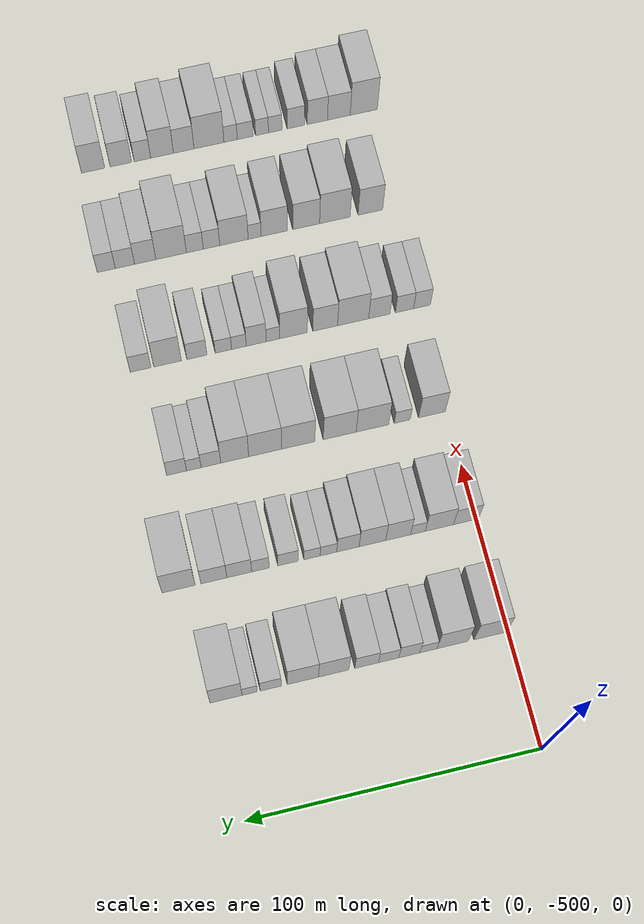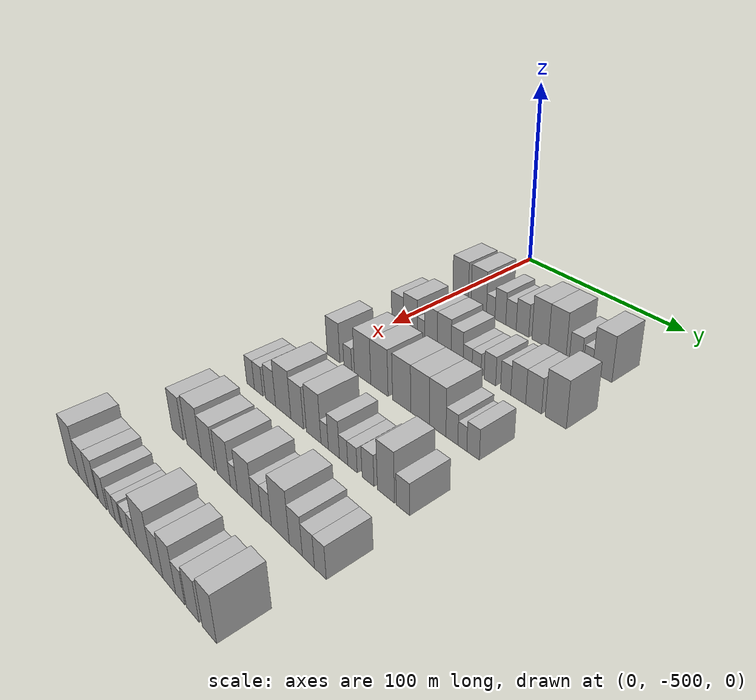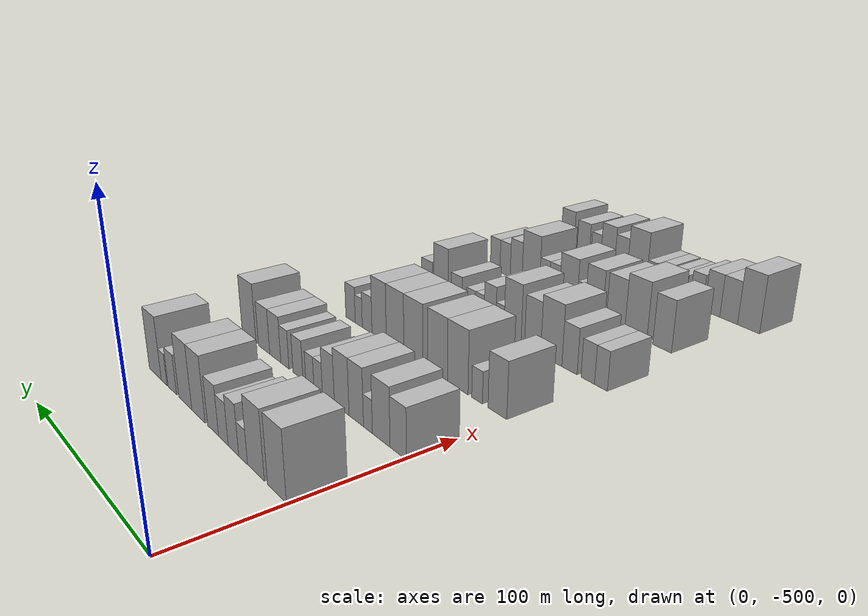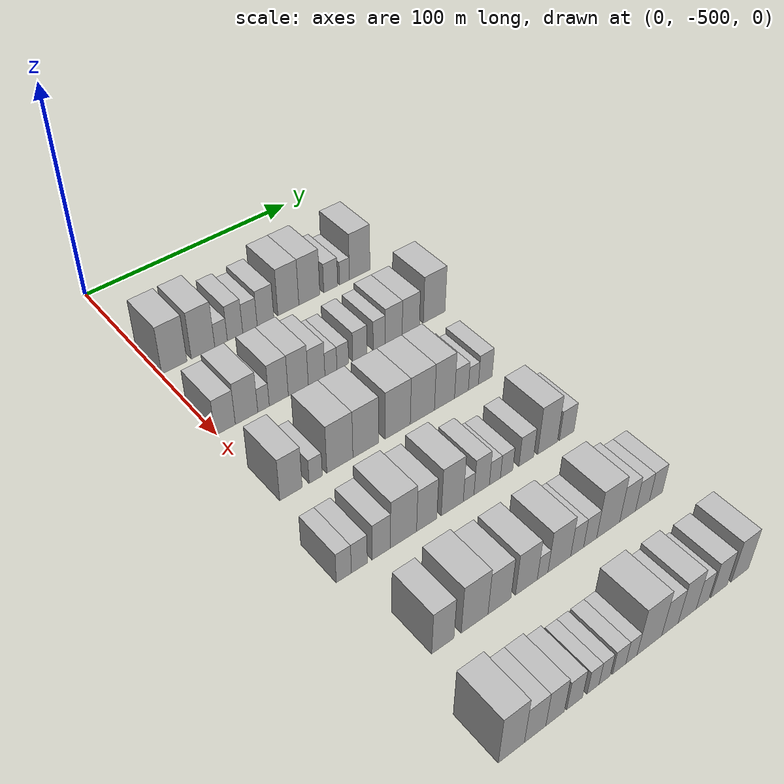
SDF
<sdf version="1.6">
 <world name="default">
  <model name="building_11">
   <static>1</static>
   <pose>50.0000 -493.7146 0 0.000000 0.000000 0.000000</pose>
   <link name="link">
    <pose>0 0 12.00 0 0 0</pose>
    <collision name="collision"><geometry><box><size>20.0000 11.3810 24.0000</size></box></geometry></collision>
    <visual name="visual">
     <cast_shadows>0</cast_shadows>
     <geometry><box><size>20.0000 11.3810 24.0000</size></box></geometry>
     <material>
      <script>
       <uri>model://HANNAS_wall/materials/scripts</uri>
       <uri>model://HANNAS_wall/materials/textures</uri>
       <name>vrc/HANNAS_wall</name>
      </script>
     </material>
    </visual>
   </link>
  </model>
  <model name="building_12">
   <static>1</static>
   <pose>50.0000 -480.6043 0 0.000000 0.000000 0.000000</pose>
   <link name="link">
    <pose>0 0 12.00 0 0 0</pose>
    <collision name="collision"><geometry><box><size>20.0000 10.8395 24.0000</size></box></geometry></collision>
    <visual name="visual">
     <cast_shadows>0</cast_shadows>
     <geometry><box><size>20.0000 10.8395 24.0000</size></box></geometry>
     <material>
      <script>
       <uri>model://HANNAS_wall/materials/scripts</uri>
       <uri>model://HANNAS_wall/materials/textures</uri>
       <name>vrc/HANNAS_wall</name>
      </script>
     </material>
    </visual>
   </link>
  </model>
  <model name="building_13">
   <static>1</static>
   <pose>50.0000 -472.2145 0 0.000000 0.000000 0.000000</pose>
   <link name="link">
    <pose>0 0 6.00 0 0 0</pose>
    <collision name="collision"><geometry><box><size>20.0000 5.9401 12.0000</size></box></geometry></collision>
    <visual name="visual">
     <cast_shadows>0</cast_shadows>
     <geometry><box><size>20.0000 5.9401 12.0000</size></box></geometry>
     <material>
      <script>
       <uri>model://HANNAS_wall/materials/scripts</uri>
       <uri>model://HANNAS_wall/materials/textures</uri>
       <name>vrc/HANNAS_wall</name>
      </script>
     </material>
    </visual>
   </link>
  </model>
  <model name="building_14">
   <static>1</static>
   <pose>50.0000 -465.6046 0 0.000000 0.000000 0.000000</pose>
   <link name="link">
    <pose>0 0 9.00 0 0 0</pose>
    <collision name="collision"><geometry><box><size>20.0000 7.2797 18.0000</size></box></geometry></collision>
    <visual name="visual">
     <cast_shadows>0</cast_shadows>
     <geometry><box><size>20.0000 7.2797 18.0000</size></box></geometry>
     <material>
      <script>
       <uri>model://HANNAS_wall/materials/scripts</uri>
       <uri>model://HANNAS_wall/materials/textures</uri>
       <name>vrc/HANNAS_wall</name>
      </script>
     </material>
    </visual>
   </link>
  </model>
  <model name="building_15">
   <static>1</static>
   <pose>50.0000 -458.4976 0 0.000000 0.000000 0.000000</pose>
   <link name="link">
    <pose>0 0 7.50 0 0 0</pose>
    <collision name="collision"><geometry><box><size>20.0000 6.9343 15.0000</size></box></geometry></collision>
    <visual name="visual">
     <cast_shadows>0</cast_shadows>
     <geometry><box><size>20.0000 6.9343 15.0000</size></box></geometry>
     <material>
      <script>
       <uri>model://HANNAS_wall/materials/scripts</uri>
       <uri>model://HANNAS_wall/materials/textures</uri>
       <name>vrc/HANNAS_wall</name>
      </script>
     </material>
    </visual>
   </link>
  </model>
  <model name="building_16">
   <static>1</static>
   <pose>50.0000 -450.9653 0 0.000000 0.000000 0.000000</pose>
   <link name="link">
    <pose>0 0 9.00 0 0 0</pose>
    <collision name="collision"><geometry><box><size>20.0000 8.1302 18.0000</size></box></geometry></collision>
    <visual name="visual">
     <cast_shadows>0</cast_shadows>
     <geometry><box><size>20.0000 8.1302 18.0000</size></box></geometry>
     <material>
      <script>
       <uri>model://HANNAS_wall/materials/scripts</uri>
       <uri>model://HANNAS_wall/materials/textures</uri>
       <name>vrc/HANNAS_wall</name>
      </script>
     </material>
    </visual>
   </link>
  </model>
  <model name="building_17">
   <static>1</static>
   <pose>50.0000 -439.6916 0 0.000000 0.000000 0.000000</pose>
   <link name="link">
    <pose>0 0 12.00 0 0 0</pose>
    <collision name="collision"><geometry><box><size>20.0000 10.4172 24.0000</size></box></geometry></collision>
    <visual name="visual">
     <cast_shadows>0</cast_shadows>
     <geometry><box><size>20.0000 10.4172 24.0000</size></box></geometry>
     <material>
      <script>
       <uri>model://HANNAS_wall/materials/scripts</uri>
       <uri>model://HANNAS_wall/materials/textures</uri>
       <name>vrc/HANNAS_wall</name>
      </script>
     </material>
    </visual>
   </link>
  </model>
  <model name="building_18">
   <static>1</static>
   <pose>50.0000 -429.1501 0 0.000000 0.000000 0.000000</pose>
   <link name="link">
    <pose>0 0 12.00 0 0 0</pose>
    <collision name="collision"><geometry><box><size>20.0000 10.6658 24.0000</size></box></geometry></collision>
    <visual name="visual">
     <cast_shadows>0</cast_shadows>
     <geometry><box><size>20.0000 10.6658 24.0000</size></box></geometry>
     <material>
      <script>
       <uri>model://HANNAS_wall/materials/scripts</uri>
       <uri>model://HANNAS_wall/materials/textures</uri>
       <name>vrc/HANNAS_wall</name>
      </script>
     </material>
    </visual>
   </link>
  </model>
  <model name="building_19">
   <static>1</static>
   <pose>50.0000 -418.2169 0 0.000000 0.000000 0.000000</pose>
   <link name="link">
    <pose>0 0 7.50 0 0 0</pose>
    <collision name="collision"><geometry><box><size>20.0000 7.2005 15.0000</size></box></geometry></collision>
    <visual name="visual">
     <cast_shadows>0</cast_shadows>
     <geometry><box><size>20.0000 7.2005 15.0000</size></box></geometry>
     <material>
      <script>
       <uri>model://HANNAS_wall/materials/scripts</uri>
       <uri>model://HANNAS_wall/materials/textures</uri>
       <name>vrc/HANNAS_wall</name>
      </script>
     </material>
    </visual>
   </link>
  </model>
  <model name="building_20">
   <static>1</static>
   <pose>50.0000 -411.0468 0 0.000000 0.000000 0.000000</pose>
   <link name="link">
    <pose>0 0 6.00 0 0 0</pose>
    <collision name="collision"><geometry><box><size>20.0000 5.1398 12.0000</size></box></geometry></collision>
    <visual name="visual">
     <cast_shadows>0</cast_shadows>
     <geometry><box><size>20.0000 5.1398 12.0000</size></box></geometry>
     <material>
      <script>
       <uri>model://HANNAS_wall/materials/scripts</uri>
       <uri>model://HANNAS_wall/materials/textures</uri>
       <name>vrc/HANNAS_wall</name>
      </script>
     </material>
    </visual>
   </link>
  </model>
  <model name="building_21">
   <static>1</static>
   <pose>50.0000 -403.0374 0 0.000000 0.000000 0.000000</pose>
   <link name="link">
    <pose>0 0 12.00 0 0 0</pose>
    <collision name="collision"><geometry><box><size>20.0000 10.8790 24.0000</size></box></geometry></collision>
    <visual name="visual">
     <cast_shadows>0</cast_shadows>
     <geometry><box><size>20.0000 10.8790 24.0000</size></box></geometry>
     <material>
      <script>
       <uri>model://HANNAS_wall/materials/scripts</uri>
       <uri>model://HANNAS_wall/materials/textures</uri>
       <name>vrc/HANNAS_wall</name>
      </script>
     </material>
    </visual>
   </link>
  </model>
  <model name="building_142">
   <static>1</static>
   <pose>90.0000 -496.2569 0 0.000000 0.000000 0.000000</pose>
   <link name="link">
    <pose>0 0 9.00 0 0 0</pose>
    <collision name="collision"><geometry><box><size>20.0000 8.9079 18.0000</size></box></geometry></collision>
    <visual name="visual">
     <cast_shadows>0</cast_shadows>
     <geometry><box><size>20.0000 8.9079 18.0000</size></box></geometry>
     <material>
      <script>
       <uri>model://HANNAS_wall/materials/scripts</uri>
       <uri>model://HANNAS_wall/materials/textures</uri>
       <name>vrc/HANNAS_wall</name>
      </script>
     </material>
    </visual>
   </link>
  </model>
  <model name="building_143">
   <static>1</static>
   <pose>90.0000 -486.7969 0 0.000000 0.000000 0.000000</pose>
   <link name="link">
    <pose>0 0 10.50 0 0 0</pose>
    <collision name="collision"><geometry><box><size>20.0000 10.0123 21.0000</size></box></geometry></collision>
    <visual name="visual">
     <cast_shadows>0</cast_shadows>
     <geometry><box><size>20.0000 10.0123 21.0000</size></box></geometry>
     <material>
      <script>
       <uri>model://HANNAS_wall/materials/scripts</uri>
       <uri>model://HANNAS_wall/materials/textures</uri>
       <name>vrc/HANNAS_wall</name>
      </script>
     </material>
    </visual>
   </link>
  </model>
  <model name="building_144">
   <static>1</static>
   <pose>90.0000 -479.1912 0 0.000000 0.000000 0.000000</pose>
   <link name="link">
    <pose>0 0 6.00 0 0 0</pose>
    <collision name="collision"><geometry><box><size>20.0000 5.1990 12.0000</size></box></geometry></collision>
    <visual name="visual">
     <cast_shadows>0</cast_shadows>
     <geometry><box><size>20.0000 5.1990 12.0000</size></box></geometry>
     <material>
      <script>
       <uri>model://HANNAS_wall/materials/scripts</uri>
       <uri>model://HANNAS_wall/materials/textures</uri>
       <name>vrc/HANNAS_wall</name>
      </script>
     </material>
    </visual>
   </link>
  </model>
  <model name="building_145">
   <static>1</static>
   <pose>90.0000 -472.2256 0 0.000000 0.000000 0.000000</pose>
   <link name="link">
    <pose>0 0 10.50 0 0 0</pose>
    <collision name="collision"><geometry><box><size>20.0000 8.7324 21.0000</size></box></geometry></collision>
    <visual name="visual">
     <cast_shadows>0</cast_shadows>
     <geometry><box><size>20.0000 8.7324 21.0000</size></box></geometry>
     <material>
      <script>
       <uri>model://HANNAS_wall/materials/scripts</uri>
       <uri>model://HANNAS_wall/materials/textures</uri>
       <name>vrc/HANNAS_wall</name>
      </script>
     </material>
    </visual>
   </link>
  </model>
  <model name="building_146">
   <static>1</static>
   <pose>90.0000 -463.2004 0 0.000000 0.000000 0.000000</pose>
   <link name="link">
    <pose>0 0 10.50 0 0 0</pose>
    <collision name="collision"><geometry><box><size>20.0000 9.3180 21.0000</size></box></geometry></collision>
    <visual name="visual">
     <cast_shadows>0</cast_shadows>
     <geometry><box><size>20.0000 9.3180 21.0000</size></box></geometry>
     <material>
      <script>
       <uri>model://HANNAS_wall/materials/scripts</uri>
       <uri>model://HANNAS_wall/materials/textures</uri>
       <name>vrc/HANNAS_wall</name>
      </script>
     </material>
    </visual>
   </link>
  </model>
  <model name="building_147">
   <static>1</static>
   <pose>90.0000 -454.6107 0 0.000000 0.000000 0.000000</pose>
   <link name="link">
    <pose>0 0 9.00 0 0 0</pose>
    <collision name="collision"><geometry><box><size>20.0000 7.8613 18.0000</size></box></geometry></collision>
    <visual name="visual">
     <cast_shadows>0</cast_shadows>
     <geometry><box><size>20.0000 7.8613 18.0000</size></box></geometry>
     <material>
      <script>
       <uri>model://HANNAS_wall/materials/scripts</uri>
       <uri>model://HANNAS_wall/materials/textures</uri>
       <name>vrc/HANNAS_wall</name>
      </script>
     </material>
    </visual>
   </link>
  </model>
  <model name="building_148">
   <static>1</static>
   <pose>90.0000 -447.7978 0 0.000000 0.000000 0.000000</pose>
   <link name="link">
    <pose>0 0 6.00 0 0 0</pose>
    <collision name="collision"><geometry><box><size>20.0000 5.7645 12.0000</size></box></geometry></collision>
    <visual name="visual">
     <cast_shadows>0</cast_shadows>
     <geometry><box><size>20.0000 5.7645 12.0000</size></box></geometry>
     <material>
      <script>
       <uri>model://HANNAS_wall/materials/scripts</uri>
       <uri>model://HANNAS_wall/materials/textures</uri>
       <name>vrc/HANNAS_wall</name>
      </script>
     </material>
    </visual>
   </link>
  </model>
  <model name="building_149">
   <static>1</static>
   <pose>90.0000 -442.0773 0 0.000000 0.000000 0.000000</pose>
   <link name="link">
    <pose>0 0 6.00 0 0 0</pose>
    <collision name="collision"><geometry><box><size>20.0000 5.6764 12.0000</size></box></geometry></collision>
    <visual name="visual">
     <cast_shadows>0</cast_shadows>
     <geometry><box><size>20.0000 5.6764 12.0000</size></box></geometry>
     <material>
      <script>
       <uri>model://HANNAS_wall/materials/scripts</uri>
       <uri>model://HANNAS_wall/materials/textures</uri>
       <name>vrc/HANNAS_wall</name>
      </script>
     </material>
    </visual>
   </link>
  </model>
  <model name="building_150">
   <static>1</static>
   <pose>90.0000 -433.6785 0 0.000000 0.000000 0.000000</pose>
   <link name="link">
    <pose>0 0 7.50 0 0 0</pose>
    <collision name="collision"><geometry><box><size>20.0000 7.1213 15.0000</size></box></geometry></collision>
    <visual name="visual">
     <cast_shadows>0</cast_shadows>
     <geometry><box><size>20.0000 7.1213 15.0000</size></box></geometry>
     <material>
      <script>
       <uri>model://HANNAS_wall/materials/scripts</uri>
       <uri>model://HANNAS_wall/materials/textures</uri>
       <name>vrc/HANNAS_wall</name>
      </script>
     </material>
    </visual>
   </link>
  </model>
  <model name="building_151">
   <static>1</static>
   <pose>90.0000 -424.0725 0 0.000000 0.000000 0.000000</pose>
   <link name="link">
    <pose>0 0 7.50 0 0 0</pose>
    <collision name="collision"><geometry><box><size>20.0000 6.0905 15.0000</size></box></geometry></collision>
    <visual name="visual">
     <cast_shadows>0</cast_shadows>
     <geometry><box><size>20.0000 6.0905 15.0000</size></box></geometry>
     <material>
      <script>
       <uri>model://HANNAS_wall/materials/scripts</uri>
       <uri>model://HANNAS_wall/materials/textures</uri>
       <name>vrc/HANNAS_wall</name>
      </script>
     </material>
    </visual>
   </link>
  </model>
  <model name="building_152">
   <static>1</static>
   <pose>90.0000 -416.7188 0 0.000000 0.000000 0.000000</pose>
   <link name="link">
    <pose>0 0 9.00 0 0 0</pose>
    <collision name="collision"><geometry><box><size>20.0000 8.6170 18.0000</size></box></geometry></collision>
    <visual name="visual">
     <cast_shadows>0</cast_shadows>
     <geometry><box><size>20.0000 8.6170 18.0000</size></box></geometry>
     <material>
      <script>
       <uri>model://HANNAS_wall/materials/scripts</uri>
       <uri>model://HANNAS_wall/materials/textures</uri>
       <name>vrc/HANNAS_wall</name>
      </script>
     </material>
    </visual>
   </link>
  </model>
  <model name="building_153">
   <static>1</static>
   <pose>90.0000 -407.9263 0 0.000000 0.000000 0.000000</pose>
   <link name="link">
    <pose>0 0 9.00 0 0 0</pose>
    <collision name="collision"><geometry><box><size>20.0000 8.9680 18.0000</size></box></geometry></collision>
    <visual name="visual">
     <cast_shadows>0</cast_shadows>
     <geometry><box><size>20.0000 8.9680 18.0000</size></box></geometry>
     <material>
      <script>
       <uri>model://HANNAS_wall/materials/scripts</uri>
       <uri>model://HANNAS_wall/materials/textures</uri>
       <name>vrc/HANNAS_wall</name>
      </script>
     </material>
    </visual>
   </link>
  </model>
  <model name="building_154">
   <static>1</static>
   <pose>90.0000 -395.7171 0 0.000000 0.000000 0.000000</pose>
   <link name="link">
    <pose>0 0 12.00 0 0 0</pose>
    <collision name="collision"><geometry><box><size>20.0000 11.4505 24.0000</size></box></geometry></collision>
    <visual name="visual">
     <cast_shadows>0</cast_shadows>
     <geometry><box><size>20.0000 11.4505 24.0000</size></box></geometry>
     <material>
      <script>
       <uri>model://HANNAS_wall/materials/scripts</uri>
       <uri>model://HANNAS_wall/materials/textures</uri>
       <name>vrc/HANNAS_wall</name>
      </script>
     </material>
    </visual>
   </link>
  </model>
  <model name="building_277">
   <static>1</static>
   <pose>130.0000 -494.8656 0 0.000000 0.000000 0.000000</pose>
   <link name="link">
    <pose>0 0 10.50 0 0 0</pose>
    <collision name="collision"><geometry><box><size>20.0000 9.6396 21.0000</size></box></geometry></collision>
    <visual name="visual">
     <cast_shadows>0</cast_shadows>
     <geometry><box><size>20.0000 9.6396 21.0000</size></box></geometry>
     <material>
      <script>
       <uri>model://HANNAS_wall/materials/scripts</uri>
       <uri>model://HANNAS_wall/materials/textures</uri>
       <name>vrc/HANNAS_wall</name>
      </script>
     </material>
    </visual>
   </link>
  </model>
  <model name="building_278">
   <static>1</static>
   <pose>130.0000 -484.1559 0 0.000000 0.000000 0.000000</pose>
   <link name="link">
    <pose>0 0 6.00 0 0 0</pose>
    <collision name="collision"><geometry><box><size>20.0000 5.7797 12.0000</size></box></geometry></collision>
    <visual name="visual">
     <cast_shadows>0</cast_shadows>
     <geometry><box><size>20.0000 5.7797 12.0000</size></box></geometry>
     <material>
      <script>
       <uri>model://HANNAS_wall/materials/scripts</uri>
       <uri>model://HANNAS_wall/materials/textures</uri>
       <name>vrc/HANNAS_wall</name>
      </script>
     </material>
    </visual>
   </link>
  </model>
  <model name="building_279">
   <static>1</static>
   <pose>130.0000 -473.4327 0 0.000000 0.000000 0.000000</pose>
   <link name="link">
    <pose>0 0 12.00 0 0 0</pose>
    <collision name="collision"><geometry><box><size>20.0000 11.6667 24.0000</size></box></geometry></collision>
    <visual name="visual">
     <cast_shadows>0</cast_shadows>
     <geometry><box><size>20.0000 11.6667 24.0000</size></box></geometry>
     <material>
      <script>
       <uri>model://HANNAS_wall/materials/scripts</uri>
       <uri>model://HANNAS_wall/materials/textures</uri>
       <name>vrc/HANNAS_wall</name>
      </script>
     </material>
    </visual>
   </link>
  </model>
  <model name="building_280">
   <static>1</static>
   <pose>130.0000 -461.7021 0 0.000000 0.000000 0.000000</pose>
   <link name="link">
    <pose>0 0 12.00 0 0 0</pose>
    <collision name="collision"><geometry><box><size>20.0000 11.7945 24.0000</size></box></geometry></collision>
    <visual name="visual">
     <cast_shadows>0</cast_shadows>
     <geometry><box><size>20.0000 11.7945 24.0000</size></box></geometry>
     <material>
      <script>
       <uri>model://HANNAS_wall/materials/scripts</uri>
       <uri>model://HANNAS_wall/materials/textures</uri>
       <name>vrc/HANNAS_wall</name>
      </script>
     </material>
    </visual>
   </link>
  </model>
  <model name="building_281">
   <static>1</static>
   <pose>130.0000 -446.8743 0 0.000000 0.000000 0.000000</pose>
   <link name="link">
    <pose>0 0 12.00 0 0 0</pose>
    <collision name="collision"><geometry><box><size>20.0000 11.8611 24.0000</size></box></geometry></collision>
    <visual name="visual">
     <cast_shadows>0</cast_shadows>
     <geometry><box><size>20.0000 11.8611 24.0000</size></box></geometry>
     <material>
      <script>
       <uri>model://HANNAS_wall/materials/scripts</uri>
       <uri>model://HANNAS_wall/materials/textures</uri>
       <name>vrc/HANNAS_wall</name>
      </script>
     </material>
    </visual>
   </link>
  </model>
  <model name="building_282">
   <static>1</static>
   <pose>130.0000 -435.1033 0 0.000000 0.000000 0.000000</pose>
   <link name="link">
    <pose>0 0 12.00 0 0 0</pose>
    <collision name="collision"><geometry><box><size>20.0000 11.6809 24.0000</size></box></geometry></collision>
    <visual name="visual">
     <cast_shadows>0</cast_shadows>
     <geometry><box><size>20.0000 11.6809 24.0000</size></box></geometry>
     <material>
      <script>
       <uri>model://HANNAS_wall/materials/scripts</uri>
       <uri>model://HANNAS_wall/materials/textures</uri>
       <name>vrc/HANNAS_wall</name>
      </script>
     </material>
    </visual>
   </link>
  </model>
  <model name="building_283">
   <static>1</static>
   <pose>130.0000 -424.3025 0 0.000000 0.000000 0.000000</pose>
   <link name="link">
    <pose>0 0 12.00 0 0 0</pose>
    <collision name="collision"><geometry><box><size>20.0000 9.9207 24.0000</size></box></geometry></collision>
    <visual name="visual">
     <cast_shadows>0</cast_shadows>
     <geometry><box><size>20.0000 9.9207 24.0000</size></box></geometry>
     <material>
      <script>
       <uri>model://HANNAS_wall/materials/scripts</uri>
       <uri>model://HANNAS_wall/materials/textures</uri>
       <name>vrc/HANNAS_wall</name>
      </script>
     </material>
    </visual>
   </link>
  </model>
  <model name="building_284">
   <static>1</static>
   <pose>130.0000 -415.8684 0 0.000000 0.000000 0.000000</pose>
   <link name="link">
    <pose>0 0 7.50 0 0 0</pose>
    <collision name="collision"><geometry><box><size>20.0000 6.9473 15.0000</size></box></geometry></collision>
    <visual name="visual">
     <cast_shadows>0</cast_shadows>
     <geometry><box><size>20.0000 6.9473 15.0000</size></box></geometry>
     <material>
      <script>
       <uri>model://HANNAS_wall/materials/scripts</uri>
       <uri>model://HANNAS_wall/materials/textures</uri>
       <name>vrc/HANNAS_wall</name>
      </script>
     </material>
    </visual>
   </link>
  </model>
  <model name="building_285">
   <static>1</static>
   <pose>130.0000 -409.8244 0 0.000000 0.000000 0.000000</pose>
   <link name="link">
    <pose>0 0 6.00 0 0 0</pose>
    <collision name="collision"><geometry><box><size>20.0000 5.1406 12.0000</size></box></geometry></collision>
    <visual name="visual">
     <cast_shadows>0</cast_shadows>
     <geometry><box><size>20.0000 5.1406 12.0000</size></box></geometry>
     <material>
      <script>
       <uri>model://HANNAS_wall/materials/scripts</uri>
       <uri>model://HANNAS_wall/materials/textures</uri>
       <name>vrc/HANNAS_wall</name>
      </script>
     </material>
    </visual>
   </link>
  </model>
  <model name="building_286">
   <static>1</static>
   <pose>130.0000 -403.7501 0 0.000000 0.000000 0.000000</pose>
   <link name="link">
    <pose>0 0 7.50 0 0 0</pose>
    <collision name="collision"><geometry><box><size>20.0000 7.0080 15.0000</size></box></geometry></collision>
    <visual name="visual">
     <cast_shadows>0</cast_shadows>
     <geometry><box><size>20.0000 7.0080 15.0000</size></box></geometry>
     <material>
      <script>
       <uri>model://HANNAS_wall/materials/scripts</uri>
       <uri>model://HANNAS_wall/materials/textures</uri>
       <name>vrc/HANNAS_wall</name>
      </script>
     </material>
    </visual>
   </link>
  </model>
  <model name="building_413">
   <static>1</static>
   <pose>170.0000 -501.8727 0 0.000000 0.000000 0.000000</pose>
   <link name="link">
    <pose>0 0 7.50 0 0 0</pose>
    <collision name="collision"><geometry><box><size>20.0000 6.2137 15.0000</size></box></geometry></collision>
    <visual name="visual">
     <cast_shadows>0</cast_shadows>
     <geometry><box><size>20.0000 6.2137 15.0000</size></box></geometry>
     <material>
      <script>
       <uri>model://HANNAS_wall/materials/scripts</uri>
       <uri>model://HANNAS_wall/materials/textures</uri>
       <name>vrc/HANNAS_wall</name>
      </script>
     </material>
    </visual>
   </link>
  </model>
  <model name="building_414">
   <static>1</static>
   <pose>170.0000 -495.4312 0 0.000000 0.000000 0.000000</pose>
   <link name="link">
    <pose>0 0 7.50 0 0 0</pose>
    <collision name="collision"><geometry><box><size>20.0000 6.6694 15.0000</size></box></geometry></collision>
    <visual name="visual">
     <cast_shadows>0</cast_shadows>
     <geometry><box><size>20.0000 6.6694 15.0000</size></box></geometry>
     <material>
      <script>
       <uri>model://HANNAS_wall/materials/scripts</uri>
       <uri>model://HANNAS_wall/materials/textures</uri>
       <name>vrc/HANNAS_wall</name>
      </script>
     </material>
    </visual>
   </link>
  </model>
  <model name="building_415">
   <static>1</static>
   <pose>170.0000 -486.1845 0 0.000000 0.000000 0.000000</pose>
   <link name="link">
    <pose>0 0 9.00 0 0 0</pose>
    <collision name="collision"><geometry><box><size>20.0000 7.8241 18.0000</size></box></geometry></collision>
    <visual name="visual">
     <cast_shadows>0</cast_shadows>
     <geometry><box><size>20.0000 7.8241 18.0000</size></box></geometry>
     <material>
      <script>
       <uri>model://HANNAS_wall/materials/scripts</uri>
       <uri>model://HANNAS_wall/materials/textures</uri>
       <name>vrc/HANNAS_wall</name>
      </script>
     </material>
    </visual>
   </link>
  </model>
  <model name="building_416">
   <static>1</static>
   <pose>170.0000 -476.5696 0 0.000000 0.000000 0.000000</pose>
   <link name="link">
    <pose>0 0 12.00 0 0 0</pose>
    <collision name="collision"><geometry><box><size>20.0000 11.4057 24.0000</size></box></geometry></collision>
    <visual name="visual">
     <cast_shadows>0</cast_shadows>
     <geometry><box><size>20.0000 11.4057 24.0000</size></box></geometry>
     <material>
      <script>
       <uri>model://HANNAS_wall/materials/scripts</uri>
       <uri>model://HANNAS_wall/materials/textures</uri>
       <name>vrc/HANNAS_wall</name>
      </script>
     </material>
    </visual>
   </link>
  </model>
  <model name="building_417">
   <static>1</static>
   <pose>170.0000 -466.3565 0 0.000000 0.000000 0.000000</pose>
   <link name="link">
    <pose>0 0 10.50 0 0 0</pose>
    <collision name="collision"><geometry><box><size>20.0000 9.0203 21.0000</size></box></geometry></collision>
    <visual name="visual">
     <cast_shadows>0</cast_shadows>
     <geometry><box><size>20.0000 9.0203 21.0000</size></box></geometry>
     <material>
      <script>
       <uri>model://HANNAS_wall/materials/scripts</uri>
       <uri>model://HANNAS_wall/materials/textures</uri>
       <name>vrc/HANNAS_wall</name>
      </script>
     </material>
    </visual>
   </link>
  </model>
  <model name="building_418">
   <static>1</static>
   <pose>170.0000 -454.8255 0 0.000000 0.000000 0.000000</pose>
   <link name="link">
    <pose>0 0 12.00 0 0 0</pose>
    <collision name="collision"><geometry><box><size>20.0000 10.0418 24.0000</size></box></geometry></collision>
    <visual name="visual">
     <cast_shadows>0</cast_shadows>
     <geometry><box><size>20.0000 10.0418 24.0000</size></box></geometry>
     <material>
      <script>
       <uri>model://HANNAS_wall/materials/scripts</uri>
       <uri>model://HANNAS_wall/materials/textures</uri>
       <name>vrc/HANNAS_wall</name>
      </script>
     </material>
    </visual>
   </link>
  </model>
  <model name="building_419">
   <static>1</static>
   <pose>170.0000 -447.3371 0 0.000000 0.000000 0.000000</pose>
   <link name="link">
    <pose>0 0 6.00 0 0 0</pose>
    <collision name="collision"><geometry><box><size>20.0000 4.9348 12.0000</size></box></geometry></collision>
    <visual name="visual">
     <cast_shadows>0</cast_shadows>
     <geometry><box><size>20.0000 4.9348 12.0000</size></box></geometry>
     <material>
      <script>
       <uri>model://HANNAS_wall/materials/scripts</uri>
       <uri>model://HANNAS_wall/materials/textures</uri>
       <name>vrc/HANNAS_wall</name>
      </script>
     </material>
    </visual>
   </link>
  </model>
  <model name="building_420">
   <static>1</static>
   <pose>170.0000 -441.2446 0 0.000000 0.000000 0.000000</pose>
   <link name="link">
    <pose>0 0 9.00 0 0 0</pose>
    <collision name="collision"><geometry><box><size>20.0000 7.2502 18.0000</size></box></geometry></collision>
    <visual name="visual">
     <cast_shadows>0</cast_shadows>
     <geometry><box><size>20.0000 7.2502 18.0000</size></box></geometry>
     <material>
      <script>
       <uri>model://HANNAS_wall/materials/scripts</uri>
       <uri>model://HANNAS_wall/materials/textures</uri>
       <name>vrc/HANNAS_wall</name>
      </script>
     </material>
    </visual>
   </link>
  </model>
  <model name="building_421">
   <static>1</static>
   <pose>170.0000 -434.9801 0 0.000000 0.000000 0.000000</pose>
   <link name="link">
    <pose>0 0 6.00 0 0 0</pose>
    <collision name="collision"><geometry><box><size>20.0000 5.2789 12.0000</size></box></geometry></collision>
    <visual name="visual">
     <cast_shadows>0</cast_shadows>
     <geometry><box><size>20.0000 5.2789 12.0000</size></box></geometry>
     <material>
      <script>
       <uri>model://HANNAS_wall/materials/scripts</uri>
       <uri>model://HANNAS_wall/materials/textures</uri>
       <name>vrc/HANNAS_wall</name>
      </script>
     </material>
    </visual>
   </link>
  </model>
  <model name="building_422">
   <static>1</static>
   <pose>170.0000 -429.3710 0 0.000000 0.000000 0.000000</pose>
   <link name="link">
    <pose>0 0 6.00 0 0 0</pose>
    <collision name="collision"><geometry><box><size>20.0000 5.9393 12.0000</size></box></geometry></collision>
    <visual name="visual">
     <cast_shadows>0</cast_shadows>
     <geometry><box><size>20.0000 5.9393 12.0000</size></box></geometry>
     <material>
      <script>
       <uri>model://HANNAS_wall/materials/scripts</uri>
       <uri>model://HANNAS_wall/materials/textures</uri>
       <name>vrc/HANNAS_wall</name>
      </script>
     </material>
    </visual>
   </link>
  </model>
  <model name="building_423">
   <static>1</static>
   <pose>170.0000 -419.7879 0 0.000000 0.000000 0.000000</pose>
   <link name="link">
    <pose>0 0 7.50 0 0 0</pose>
    <collision name="collision"><geometry><box><size>20.0000 7.2268 15.0000</size></box></geometry></collision>
    <visual name="visual">
     <cast_shadows>0</cast_shadows>
     <geometry><box><size>20.0000 7.2268 15.0000</size></box></geometry>
     <material>
      <script>
       <uri>model://HANNAS_wall/materials/scripts</uri>
       <uri>model://HANNAS_wall/materials/textures</uri>
       <name>vrc/HANNAS_wall</name>
      </script>
     </material>
    </visual>
   </link>
  </model>
  <model name="building_424">
   <static>1</static>
   <pose>170.0000 -409.2145 0 0.000000 0.000000 0.000000</pose>
   <link name="link">
    <pose>0 0 12.00 0 0 0</pose>
    <collision name="collision"><geometry><box><size>20.0000 9.9201 24.0000</size></box></geometry></collision>
    <visual name="visual">
     <cast_shadows>0</cast_shadows>
     <geometry><box><size>20.0000 9.9201 24.0000</size></box></geometry>
     <material>
      <script>
       <uri>model://HANNAS_wall/materials/scripts</uri>
       <uri>model://HANNAS_wall/materials/textures</uri>
       <name>vrc/HANNAS_wall</name>
      </script>
     </material>
    </visual>
   </link>
  </model>
  <model name="building_425">
   <static>1</static>
   <pose>170.0000 -399.5235 0 0.000000 0.000000 0.000000</pose>
   <link name="link">
    <pose>0 0 7.50 0 0 0</pose>
    <collision name="collision"><geometry><box><size>20.0000 7.4619 15.0000</size></box></geometry></collision>
    <visual name="visual">
     <cast_shadows>0</cast_shadows>
     <geometry><box><size>20.0000 7.4619 15.0000</size></box></geometry>
     <material>
      <script>
       <uri>model://HANNAS_wall/materials/scripts</uri>
       <uri>model://HANNAS_wall/materials/textures</uri>
       <name>vrc/HANNAS_wall</name>
      </script>
     </material>
    </visual>
   </link>
  </model>
  <model name="building_543">
   <static>1</static>
   <pose>210.0000 -493.1191 0 0.000000 0.000000 0.000000</pose>
   <link name="link">
    <pose>0 0 10.50 0 0 0</pose>
    <collision name="collision"><geometry><box><size>20.0000 9.1977 21.0000</size></box></geometry></collision>
    <visual name="visual">
     <cast_shadows>0</cast_shadows>
     <geometry><box><size>20.0000 9.1977 21.0000</size></box></geometry>
     <material>
      <script>
       <uri>model://HANNAS_wall/materials/scripts</uri>
       <uri>model://HANNAS_wall/materials/textures</uri>
       <name>vrc/HANNAS_wall</name>
      </script>
     </material>
    </visual>
   </link>
  </model>
  <model name="building_544">
   <static>1</static>
   <pose>210.0000 -479.8326 0 0.000000 0.000000 0.000000</pose>
   <link name="link">
    <pose>0 0 12.00 0 0 0</pose>
    <collision name="collision"><geometry><box><size>20.0000 11.3753 24.0000</size></box></geometry></collision>
    <visual name="visual">
     <cast_shadows>0</cast_shadows>
     <geometry><box><size>20.0000 11.3753 24.0000</size></box></geometry>
     <material>
      <script>
       <uri>model://HANNAS_wall/materials/scripts</uri>
       <uri>model://HANNAS_wall/materials/textures</uri>
       <name>vrc/HANNAS_wall</name>
      </script>
     </material>
    </visual>
   </link>
  </model>
  <model name="building_545">
   <static>1</static>
   <pose>210.0000 -469.1522 0 0.000000 0.000000 0.000000</pose>
   <link name="link">
    <pose>0 0 10.50 0 0 0</pose>
    <collision name="collision"><geometry><box><size>20.0000 9.9855 21.0000</size></box></geometry></collision>
    <visual name="visual">
     <cast_shadows>0</cast_shadows>
     <geometry><box><size>20.0000 9.9855 21.0000</size></box></geometry>
     <material>
      <script>
       <uri>model://HANNAS_wall/materials/scripts</uri>
       <uri>model://HANNAS_wall/materials/textures</uri>
       <name>vrc/HANNAS_wall</name>
      </script>
     </material>
    </visual>
   </link>
  </model>
  <model name="building_546">
   <static>1</static>
   <pose>210.0000 -457.2880 0 0.000000 0.000000 0.000000</pose>
   <link name="link">
    <pose>0 0 10.50 0 0 0</pose>
    <collision name="collision"><geometry><box><size>20.0000 9.7430 21.0000</size></box></geometry></collision>
    <visual name="visual">
     <cast_shadows>0</cast_shadows>
     <geometry><box><size>20.0000 9.7430 21.0000</size></box></geometry>
     <material>
      <script>
       <uri>model://HANNAS_wall/materials/scripts</uri>
       <uri>model://HANNAS_wall/materials/textures</uri>
       <name>vrc/HANNAS_wall</name>
      </script>
     </material>
    </visual>
   </link>
  </model>
  <model name="building_547">
   <static>1</static>
   <pose>210.0000 -449.9953 0 0.000000 0.000000 0.000000</pose>
   <link name="link">
    <pose>0 0 6.00 0 0 0</pose>
    <collision name="collision"><geometry><box><size>20.0000 4.8422 12.0000</size></box></geometry></collision>
    <visual name="visual">
     <cast_shadows>0</cast_shadows>
     <geometry><box><size>20.0000 4.8422 12.0000</size></box></geometry>
     <material>
      <script>
       <uri>model://HANNAS_wall/materials/scripts</uri>
       <uri>model://HANNAS_wall/materials/textures</uri>
       <name>vrc/HANNAS_wall</name>
      </script>
     </material>
    </visual>
   </link>
  </model>
  <model name="building_548">
   <static>1</static>
   <pose>210.0000 -442.3355 0 0.000000 0.000000 0.000000</pose>
   <link name="link">
    <pose>0 0 10.50 0 0 0</pose>
    <collision name="collision"><geometry><box><size>20.0000 10.4775 21.0000</size></box></geometry></collision>
    <visual name="visual">
     <cast_shadows>0</cast_shadows>
     <geometry><box><size>20.0000 10.4775 21.0000</size></box></geometry>
     <material>
      <script>
       <uri>model://HANNAS_wall/materials/scripts</uri>
       <uri>model://HANNAS_wall/materials/textures</uri>
       <name>vrc/HANNAS_wall</name>
      </script>
     </material>
    </visual>
   </link>
  </model>
  <model name="building_549">
   <static>1</static>
   <pose>210.0000 -434.0531 0 0.000000 0.000000 0.000000</pose>
   <link name="link">
    <pose>0 0 7.50 0 0 0</pose>
    <collision name="collision"><geometry><box><size>20.0000 6.0873 15.0000</size></box></geometry></collision>
    <visual name="visual">
     <cast_shadows>0</cast_shadows>
     <geometry><box><size>20.0000 6.0873 15.0000</size></box></geometry>
     <material>
      <script>
       <uri>model://HANNAS_wall/materials/scripts</uri>
       <uri>model://HANNAS_wall/materials/textures</uri>
       <name>vrc/HANNAS_wall</name>
      </script>
     </material>
    </visual>
   </link>
  </model>
  <model name="building_550">
   <static>1</static>
   <pose>210.0000 -427.9058 0 0.000000 0.000000 0.000000</pose>
   <link name="link">
    <pose>0 0 7.50 0 0 0</pose>
    <collision name="collision"><geometry><box><size>20.0000 6.2073 15.0000</size></box></geometry></collision>
    <visual name="visual">
     <cast_shadows>0</cast_shadows>
     <geometry><box><size>20.0000 6.2073 15.0000</size></box></geometry>
     <material>
      <script>
       <uri>model://HANNAS_wall/materials/scripts</uri>
       <uri>model://HANNAS_wall/materials/textures</uri>
       <name>vrc/HANNAS_wall</name>
      </script>
     </material>
    </visual>
   </link>
  </model>
  <model name="building_551">
   <static>1</static>
   <pose>210.0000 -419.1819 0 0.000000 0.000000 0.000000</pose>
   <link name="link">
    <pose>0 0 12.00 0 0 0</pose>
    <collision name="collision"><geometry><box><size>20.0000 11.2405 24.0000</size></box></geometry></collision>
    <visual name="visual">
     <cast_shadows>0</cast_shadows>
     <geometry><box><size>20.0000 11.2405 24.0000</size></box></geometry>
     <material>
      <script>
       <uri>model://HANNAS_wall/materials/scripts</uri>
       <uri>model://HANNAS_wall/materials/textures</uri>
       <name>vrc/HANNAS_wall</name>
      </script>
     </material>
    </visual>
   </link>
  </model>
  <model name="building_552">
   <static>1</static>
   <pose>210.0000 -409.6532 0 0.000000 0.000000 0.000000</pose>
   <link name="link">
    <pose>0 0 9.00 0 0 0</pose>
    <collision name="collision"><geometry><box><size>20.0000 7.8169 18.0000</size></box></geometry></collision>
    <visual name="visual">
     <cast_shadows>0</cast_shadows>
     <geometry><box><size>20.0000 7.8169 18.0000</size></box></geometry>
     <material>
      <script>
       <uri>model://HANNAS_wall/materials/scripts</uri>
       <uri>model://HANNAS_wall/materials/textures</uri>
       <name>vrc/HANNAS_wall</name>
      </script>
     </material>
    </visual>
   </link>
  </model>
  <model name="building_553">
   <static>1</static>
   <pose>210.0000 -402.2244 0 0.000000 0.000000 0.000000</pose>
   <link name="link">
    <pose>0 0 7.50 0 0 0</pose>
    <collision name="collision"><geometry><box><size>20.0000 7.0406 15.0000</size></box></geometry></collision>
    <visual name="visual">
     <cast_shadows>0</cast_shadows>
     <geometry><box><size>20.0000 7.0406 15.0000</size></box></geometry>
     <material>
      <script>
       <uri>model://HANNAS_wall/materials/scripts</uri>
       <uri>model://HANNAS_wall/materials/textures</uri>
       <name>vrc/HANNAS_wall</name>
      </script>
     </material>
    </visual>
   </link>
  </model>
  <model name="building_554">
   <static>1</static>
   <pose>210.0000 -395.3878 0 0.000000 0.000000 0.000000</pose>
   <link name="link">
    <pose>0 0 7.50 0 0 0</pose>
    <collision name="collision"><geometry><box><size>20.0000 6.6325 15.0000</size></box></geometry></collision>
    <visual name="visual">
     <cast_shadows>0</cast_shadows>
     <geometry><box><size>20.0000 6.6325 15.0000</size></box></geometry>
     <material>
      <script>
       <uri>model://HANNAS_wall/materials/scripts</uri>
       <uri>model://HANNAS_wall/materials/textures</uri>
       <name>vrc/HANNAS_wall</name>
      </script>
     </material>
    </visual>
   </link>
  </model>
  <model name="building_684">
   <static>1</static>
   <pose>250.0000 -500.8206 0 0.000000 0.000000 0.000000</pose>
   <link name="link">
    <pose>0 0 12.00 0 0 0</pose>
    <collision name="collision"><geometry><box><size>20.0000 10.3783 24.0000</size></box></geometry></collision>
    <visual name="visual">
     <cast_shadows>0</cast_shadows>
     <geometry><box><size>20.0000 10.3783 24.0000</size></box></geometry>
     <material>
      <script>
       <uri>model://HANNAS_wall/materials/scripts</uri>
       <uri>model://HANNAS_wall/materials/textures</uri>
       <name>vrc/HANNAS_wall</name>
      </script>
     </material>
    </visual>
   </link>
  </model>
  <model name="building_685">
   <static>1</static>
   <pose>250.0000 -491.3025 0 0.000000 0.000000 0.000000</pose>
   <link name="link">
    <pose>0 0 9.00 0 0 0</pose>
    <collision name="collision"><geometry><box><size>20.0000 8.6579 18.0000</size></box></geometry></collision>
    <visual name="visual">
     <cast_shadows>0</cast_shadows>
     <geometry><box><size>20.0000 8.6579 18.0000</size></box></geometry>
     <material>
      <script>
       <uri>model://HANNAS_wall/materials/scripts</uri>
       <uri>model://HANNAS_wall/materials/textures</uri>
       <name>vrc/HANNAS_wall</name>
      </script>
     </material>
    </visual>
   </link>
  </model>
  <model name="building_686">
   <static>1</static>
   <pose>250.0000 -483.1360 0 0.000000 0.000000 0.000000</pose>
   <link name="link">
    <pose>0 0 9.00 0 0 0</pose>
    <collision name="collision"><geometry><box><size>20.0000 7.6750 18.0000</size></box></geometry></collision>
    <visual name="visual">
     <cast_shadows>0</cast_shadows>
     <geometry><box><size>20.0000 7.6750 18.0000</size></box></geometry>
     <material>
      <script>
       <uri>model://HANNAS_wall/materials/scripts</uri>
       <uri>model://HANNAS_wall/materials/textures</uri>
       <name>vrc/HANNAS_wall</name>
      </script>
     </material>
    </visual>
   </link>
  </model>
  <model name="building_687">
   <static>1</static>
   <pose>250.0000 -474.9694 0 0.000000 0.000000 0.000000</pose>
   <link name="link">
    <pose>0 0 7.50 0 0 0</pose>
    <collision name="collision"><geometry><box><size>20.0000 6.6582 15.0000</size></box></geometry></collision>
    <visual name="visual">
     <cast_shadows>0</cast_shadows>
     <geometry><box><size>20.0000 6.6582 15.0000</size></box></geometry>
     <material>
      <script>
       <uri>model://HANNAS_wall/materials/scripts</uri>
       <uri>model://HANNAS_wall/materials/textures</uri>
       <name>vrc/HANNAS_wall</name>
      </script>
     </material>
    </visual>
   </link>
  </model>
  <model name="building_688">
   <static>1</static>
   <pose>250.0000 -467.0936 0 0.000000 0.000000 0.000000</pose>
   <link name="link">
    <pose>0 0 6.00 0 0 0</pose>
    <collision name="collision"><geometry><box><size>20.0000 5.0934 12.0000</size></box></geometry></collision>
    <visual name="visual">
     <cast_shadows>0</cast_shadows>
     <geometry><box><size>20.0000 5.0934 12.0000</size></box></geometry>
     <material>
      <script>
       <uri>model://HANNAS_wall/materials/scripts</uri>
       <uri>model://HANNAS_wall/materials/textures</uri>
       <name>vrc/HANNAS_wall</name>
      </script>
     </material>
    </visual>
   </link>
  </model>
  <model name="building_689">
   <static>1</static>
   <pose>250.0000 -462.1108 0 0.000000 0.000000 0.000000</pose>
   <link name="link">
    <pose>0 0 6.00 0 0 0</pose>
    <collision name="collision"><geometry><box><size>20.0000 4.8724 12.0000</size></box></geometry></collision>
    <visual name="visual">
     <cast_shadows>0</cast_shadows>
     <geometry><box><size>20.0000 4.8724 12.0000</size></box></geometry>
     <material>
      <script>
       <uri>model://HANNAS_wall/materials/scripts</uri>
       <uri>model://HANNAS_wall/materials/textures</uri>
       <name>vrc/HANNAS_wall</name>
      </script>
     </material>
    </visual>
   </link>
  </model>
  <model name="building_690">
   <static>1</static>
   <pose>250.0000 -455.7176 0 0.000000 0.000000 0.000000</pose>
   <link name="link">
    <pose>0 0 6.00 0 0 0</pose>
    <collision name="collision"><geometry><box><size>20.0000 5.9140 12.0000</size></box></geometry></collision>
    <visual name="visual">
     <cast_shadows>0</cast_shadows>
     <geometry><box><size>20.0000 5.9140 12.0000</size></box></geometry>
     <material>
      <script>
       <uri>model://HANNAS_wall/materials/scripts</uri>
       <uri>model://HANNAS_wall/materials/textures</uri>
       <name>vrc/HANNAS_wall</name>
      </script>
     </material>
    </visual>
   </link>
  </model>
  <model name="building_691">
   <static>1</static>
   <pose>250.0000 -450.2423 0 0.000000 0.000000 0.000000</pose>
   <link name="link">
    <pose>0 0 6.00 0 0 0</pose>
    <collision name="collision"><geometry><box><size>20.0000 5.0366 12.0000</size></box></geometry></collision>
    <visual name="visual">
     <cast_shadows>0</cast_shadows>
     <geometry><box><size>20.0000 5.0366 12.0000</size></box></geometry>
     <material>
      <script>
       <uri>model://HANNAS_wall/materials/scripts</uri>
       <uri>model://HANNAS_wall/materials/textures</uri>
       <name>vrc/HANNAS_wall</name>
      </script>
     </material>
    </visual>
   </link>
  </model>
  <model name="building_692">
   <static>1</static>
   <pose>250.0000 -442.0942 0 0.000000 0.000000 0.000000</pose>
   <link name="link">
    <pose>0 0 12.00 0 0 0</pose>
    <collision name="collision"><geometry><box><size>20.0000 11.2595 24.0000</size></box></geometry></collision>
    <visual name="visual">
     <cast_shadows>0</cast_shadows>
     <geometry><box><size>20.0000 11.2595 24.0000</size></box></geometry>
     <material>
      <script>
       <uri>model://HANNAS_wall/materials/scripts</uri>
       <uri>model://HANNAS_wall/materials/textures</uri>
       <name>vrc/HANNAS_wall</name>
      </script>
     </material>
    </visual>
   </link>
  </model>
  <model name="building_693">
   <static>1</static>
   <pose>250.0000 -432.6055 0 0.000000 0.000000 0.000000</pose>
   <link name="link">
    <pose>0 0 9.00 0 0 0</pose>
    <collision name="collision"><geometry><box><size>20.0000 7.7178 18.0000</size></box></geometry></collision>
    <visual name="visual">
     <cast_shadows>0</cast_shadows>
     <geometry><box><size>20.0000 7.7178 18.0000</size></box></geometry>
     <material>
      <script>
       <uri>model://HANNAS_wall/materials/scripts</uri>
       <uri>model://HANNAS_wall/materials/textures</uri>
       <name>vrc/HANNAS_wall</name>
      </script>
     </material>
    </visual>
   </link>
  </model>
  <model name="building_694">
   <static>1</static>
   <pose>250.0000 -424.4628 0 0.000000 0.000000 0.000000</pose>
   <link name="link">
    <pose>0 0 10.50 0 0 0</pose>
    <collision name="collision"><geometry><box><size>20.0000 8.5676 21.0000</size></box></geometry></collision>
    <visual name="visual">
     <cast_shadows>0</cast_shadows>
     <geometry><box><size>20.0000 8.5676 21.0000</size></box></geometry>
     <material>
      <script>
       <uri>model://HANNAS_wall/materials/scripts</uri>
       <uri>model://HANNAS_wall/materials/textures</uri>
       <name>vrc/HANNAS_wall</name>
      </script>
     </material>
    </visual>
   </link>
  </model>
  <model name="building_695">
   <static>1</static>
   <pose>250.0000 -417.1055 0 0.000000 0.000000 0.000000</pose>
   <link name="link">
    <pose>0 0 7.50 0 0 0</pose>
    <collision name="collision"><geometry><box><size>20.0000 6.1471 15.0000</size></box></geometry></collision>
    <visual name="visual">
     <cast_shadows>0</cast_shadows>
     <geometry><box><size>20.0000 6.1471 15.0000</size></box></geometry>
     <material>
      <script>
       <uri>model://HANNAS_wall/materials/scripts</uri>
       <uri>model://HANNAS_wall/materials/textures</uri>
       <name>vrc/HANNAS_wall</name>
      </script>
     </material>
    </visual>
   </link>
  </model>
  <model name="building_696">
   <static>1</static>
   <pose>250.0000 -409.0085 0 0.000000 0.000000 0.000000</pose>
   <link name="link">
    <pose>0 0 9.00 0 0 0</pose>
    <collision name="collision"><geometry><box><size>20.0000 8.0468 18.0000</size></box></geometry></collision>
    <visual name="visual">
     <cast_shadows>0</cast_shadows>
     <geometry><box><size>20.0000 8.0468 18.0000</size></box></geometry>
     <material>
      <script>
       <uri>model://HANNAS_wall/materials/scripts</uri>
       <uri>model://HANNAS_wall/materials/textures</uri>
       <name>vrc/HANNAS_wall</name>
      </script>
     </material>
    </visual>
   </link>
  </model>
  <model name="building_697">
   <static>1</static>
   <pose>250.0000 -398.6545 0 0.000000 0.000000 0.000000</pose>
   <link name="link">
    <pose>0 0 10.50 0 0 0</pose>
    <collision name="collision"><geometry><box><size>20.0000 8.6613 21.0000</size></box></geometry></collision>
    <visual name="visual">
     <cast_shadows>0</cast_shadows>
     <geometry><box><size>20.0000 8.6613 21.0000</size></box></geometry>
     <material>
      <script>
       <uri>model://HANNAS_wall/materials/scripts</uri>
       <uri>model://HANNAS_wall/materials/textures</uri>
       <name>vrc/HANNAS_wall</name>
      </script>
     </material>
    </visual>
   </link>
  </model>
 </world>
</sdf>
